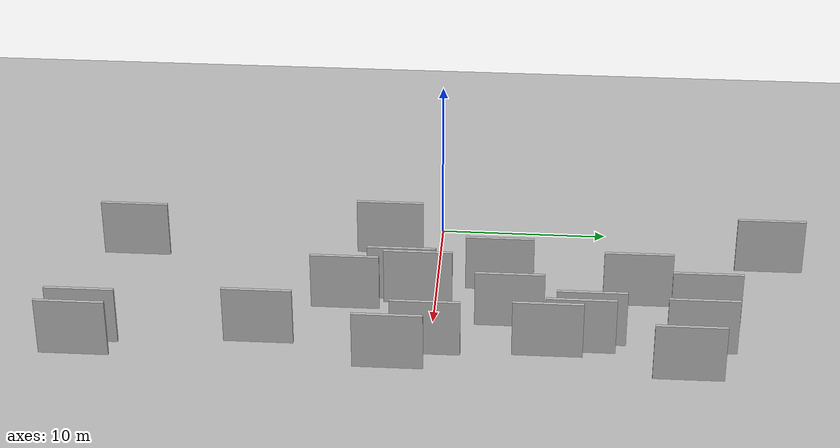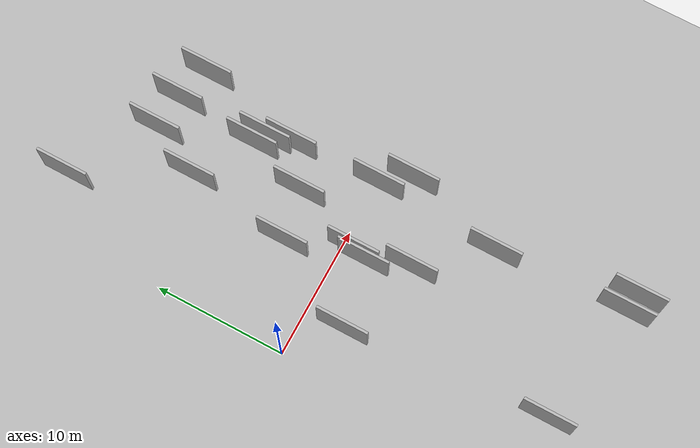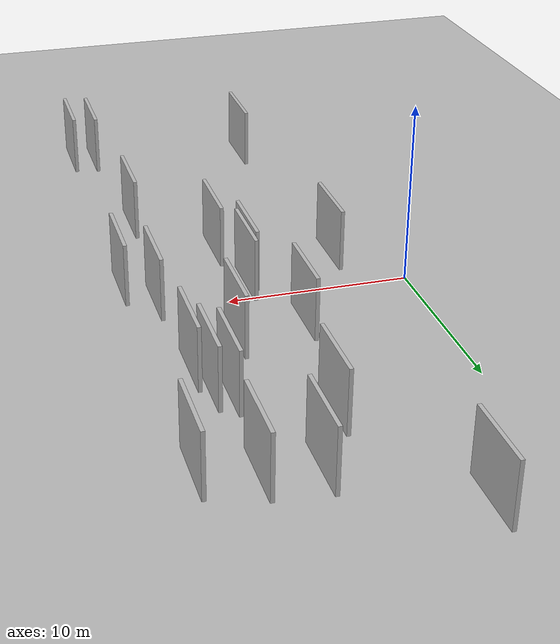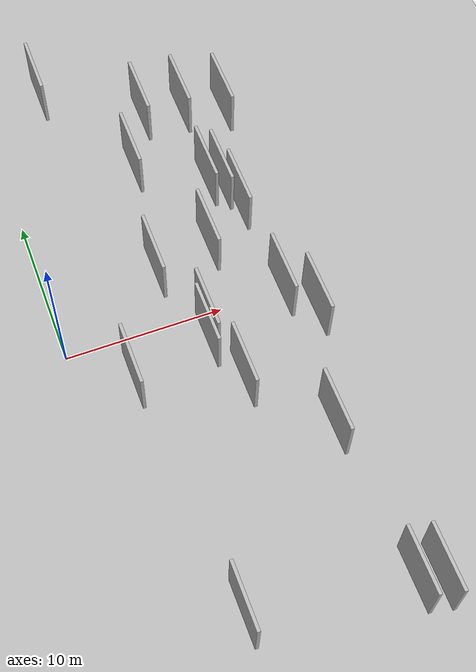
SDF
<?xml version="1.0" encoding="utf-8"?>

<sdf version="1.6">

   <world name="default">

      <gui fullscreen="0">

         <camera name="user_camera">

            <pose>-15 0 4.57585 0 0 0</pose>

            <view_controller>orbit</view_controller>

         </camera>

      </gui>

      <scene>

         <sky>

           <clouds>

             <speed>12</speed>

           </clouds>

         </sky>

         <ambient>0.4 0.4 0.4 1</ambient>

         <background>0.7 0.7 0.7 1</background>

         <shadows>1</shadows>

      </scene>

      <gravity>0 0 -9.8066</gravity>

      <magnetic_field>6e-06 2.3e-05 -4.2e-05</magnetic_field>

      <physics default="0" name="default_physics" type="ode">

         <ode>

            <solver>

               <type>quick</type>

               <iters>10</iters>

               <sor>1.0</sor>

               <use_dynamic_moi_rescaling>0</use_dynamic_moi_rescaling>

            </solver>

            <constraints>

               <cfm>0</cfm>

               <erp>0.2</erp>

               <contact_max_correcting_vel>100</contact_max_correcting_vel>

               <contact_surface_layer>0.001</contact_surface_layer>

            </constraints>

         </ode>

         <max_step_size>0.004</max_step_size>

         <real_time_factor>1</real_time_factor>

         <real_time_update_rate>250</real_time_update_rate>

      </physics>

      <light name="sun" type="directional">

         <cast_shadows>1</cast_shadows>

         <pose>0 0 10 0 0 0</pose>

         <diffuse>0.8 0.8 0.8 1</diffuse>

         <specular>0.2 0.2 0.2 1</specular>

         <attenuation>

            <range>1000</range>

            <constant>0.9</constant>

            <linear>0.01</linear>

            <quadratic>0.001</quadratic>

         </attenuation>

         <direction>-0.5 0.1 -0.9</direction>

      </light>

      <include>

         <name>ground_plane_1</name>

         <uri>model://HANNAS_ground_plane</uri>

         <pose>0 0 0  0 0 0</pose>

      </include>

      <include>

         <name>ground_plane_2</name>

         <uri>model://HANNAS_ground_plane</uri>

         <pose>100 0 0  0 0 0</pose>

      </include>

      <model name="HANNAS_wall_1">

         <static>1</static>

         <pose frame="">15.3730 -2.1959 0.0 0.000000 0.000000 1.570796</pose>

         <link name="link">

            <pose frame="">0 0 2.00 0 0 0</pose>

            <collision name="collision">

               <geometry>

                  <box>

                     <size>4.00 0.2 4.00</size>

                  </box>

               </geometry>

               <max_contacts>10</max_contacts>

               <surface>

                  <contact>

                     <ode/>

                  </contact>

                  <bounce/>

                  <friction>

                     <torsional>

                        <ode/>

                     </torsional>

                     <ode/>

                  </friction>

               </surface>

            </collision>

            <visual name="visual">

               <cast_shadows>0</cast_shadows>

               <geometry>

                  <box>

                     <size>4.00 0.2 4.00</size>

                  </box>

               </geometry>

               <material>

                  <script>

                     <uri>model://HANNAS_wall/materials/scripts</uri>

                     <uri>model://HANNAS_wall/materials/textures</uri>

                     <name>vrc/HANNAS_wall</name>

                  </script>

               </material>

            </visual>

            <self_collide>0</self_collide>

            <enable_wind>0</enable_wind>

            <kinematic>0</kinematic>

         </link>

      </model>

      <model name="HANNAS_wall_2">

         <static>1</static>

         <pose frame="">12.3552 9.1286 0.0 0.000000 0.000000 1.570796</pose>

         <link name="link">

            <pose frame="">0 0 2.00 0 0 0</pose>

            <collision name="collision">

               <geometry>

                  <box>

                     <size>4.00 0.2 4.00</size>

                  </box>

               </geometry>

               <max_contacts>10</max_contacts>

               <surface>

                  <contact>

                     <ode/>

                  </contact>

                  <bounce/>

                  <friction>

                     <torsional>

                        <ode/>

                     </torsional>

                     <ode/>

                  </friction>

               </surface>

            </collision>

            <visual name="visual">

               <cast_shadows>0</cast_shadows>

               <geometry>

                  <box>

                     <size>4.00 0.2 4.00</size>

                  </box>

               </geometry>

               <material>

                  <script>

                     <uri>model://HANNAS_wall/materials/scripts</uri>

                     <uri>model://HANNAS_wall/materials/textures</uri>

                     <name>vrc/HANNAS_wall</name>

                  </script>

               </material>

            </visual>

            <self_collide>0</self_collide>

            <enable_wind>0</enable_wind>

            <kinematic>0</kinematic>

         </link>

      </model>

      <model name="HANNAS_wall_3">

         <static>1</static>

         <pose frame="">6.9990 3.7475 0.0 0.000000 0.000000 1.570796</pose>

         <link name="link">

            <pose frame="">0 0 2.00 0 0 0</pose>

            <collision name="collision">

               <geometry>

                  <box>

                     <size>4.00 0.2 4.00</size>

                  </box>

               </geometry>

               <max_contacts>10</max_contacts>

               <surface>

                  <contact>

                     <ode/>

                  </contact>

                  <bounce/>

                  <friction>

                     <torsional>

                        <ode/>

                     </torsional>

                     <ode/>

                  </friction>

               </surface>

            </collision>

            <visual name="visual">

               <cast_shadows>0</cast_shadows>

               <geometry>

                  <box>

                     <size>4.00 0.2 4.00</size>

                  </box>

               </geometry>

               <material>

                  <script>

                     <uri>model://HANNAS_wall/materials/scripts</uri>

                     <uri>model://HANNAS_wall/materials/textures</uri>

                     <name>vrc/HANNAS_wall</name>

                  </script>

               </material>

            </visual>

            <self_collide>0</self_collide>

            <enable_wind>0</enable_wind>

            <kinematic>0</kinematic>

         </link>

      </model>

      <model name="HANNAS_wall_4">

         <static>1</static>

         <pose frame="">8.1874 11.8255 0.0 0.000000 0.000000 1.570796</pose>

         <link name="link">

            <pose frame="">0 0 2.00 0 0 0</pose>

            <collision name="collision">

               <geometry>

                  <box>

                     <size>4.00 0.2 4.00</size>

                  </box>

               </geometry>

               <max_contacts>10</max_contacts>

               <surface>

                  <contact>

                     <ode/>

                  </contact>

                  <bounce/>

                  <friction>

                     <torsional>

                        <ode/>

                     </torsional>

                     <ode/>

                  </friction>

               </surface>

            </collision>

            <visual name="visual">

               <cast_shadows>0</cast_shadows>

               <geometry>

                  <box>

                     <size>4.00 0.2 4.00</size>

                  </box>

               </geometry>

               <material>

                  <script>

                     <uri>model://HANNAS_wall/materials/scripts</uri>

                     <uri>model://HANNAS_wall/materials/textures</uri>

                     <name>vrc/HANNAS_wall</name>

                  </script>

               </material>

            </visual>

            <self_collide>0</self_collide>

            <enable_wind>0</enable_wind>

            <kinematic>0</kinematic>

         </link>

      </model>

      <model name="HANNAS_wall_5">

         <static>1</static>

         <pose frame="">4.0295 19.7095 0.0 0.000000 0.000000 1.570796</pose>

         <link name="link">

            <pose frame="">0 0 2.00 0 0 0</pose>

            <collision name="collision">

               <geometry>

                  <box>

                     <size>4.00 0.2 4.00</size>

                  </box>

               </geometry>

               <max_contacts>10</max_contacts>

               <surface>

                  <contact>

                     <ode/>

                  </contact>

                  <bounce/>

                  <friction>

                     <torsional>

                        <ode/>

                     </torsional>

                     <ode/>

                  </friction>

               </surface>

            </collision>

            <visual name="visual">

               <cast_shadows>0</cast_shadows>

               <geometry>

                  <box>

                     <size>4.00 0.2 4.00</size>

                  </box>

               </geometry>

               <material>

                  <script>

                     <uri>model://HANNAS_wall/materials/scripts</uri>

                     <uri>model://HANNAS_wall/materials/textures</uri>

                     <name>vrc/HANNAS_wall</name>

                  </script>

               </material>

            </visual>

            <self_collide>0</self_collide>

            <enable_wind>0</enable_wind>

            <kinematic>0</kinematic>

         </link>

      </model>

      <model name="HANNAS_wall_6">

         <static>1</static>

         <pose frame="">13.8644 -19.7052 0.0 0.000000 0.000000 1.570796</pose>

         <link name="link">

            <pose frame="">0 0 2.00 0 0 0</pose>

            <collision name="collision">

               <geometry>

                  <box>

                     <size>4.00 0.2 4.00</size>

                  </box>

               </geometry>

               <max_contacts>10</max_contacts>

               <surface>

                  <contact>

                     <ode/>

                  </contact>

                  <bounce/>

                  <friction>

                     <torsional>

                        <ode/>

                     </torsional>

                     <ode/>

                  </friction>

               </surface>

            </collision>

            <visual name="visual">

               <cast_shadows>0</cast_shadows>

               <geometry>

                  <box>

                     <size>4.00 0.2 4.00</size>

                  </box>

               </geometry>

               <material>

                  <script>

                     <uri>model://HANNAS_wall/materials/scripts</uri>

                     <uri>model://HANNAS_wall/materials/textures</uri>

                     <name>vrc/HANNAS_wall</name>

                  </script>

               </material>

            </visual>

            <self_collide>0</self_collide>

            <enable_wind>0</enable_wind>

            <kinematic>0</kinematic>

         </link>

      </model>

      <model name="HANNAS_wall_7">

         <static>1</static>

         <pose frame="">15.4453 14.5650 0.0 0.000000 0.000000 1.570796</pose>

         <link name="link">

            <pose frame="">0 0 2.00 0 0 0</pose>

            <collision name="collision">

               <geometry>

                  <box>

                     <size>4.00 0.2 4.00</size>

                  </box>

               </geometry>

               <max_contacts>10</max_contacts>

               <surface>

                  <contact>

                     <ode/>

                  </contact>

                  <bounce/>

                  <friction>

                     <torsional>

                        <ode/>

                     </torsional>

                     <ode/>

                  </friction>

               </surface>

            </collision>

            <visual name="visual">

               <cast_shadows>0</cast_shadows>

               <geometry>

                  <box>

                     <size>4.00 0.2 4.00</size>

                  </box>

               </geometry>

               <material>

                  <script>

                     <uri>model://HANNAS_wall/materials/scripts</uri>

                     <uri>model://HANNAS_wall/materials/textures</uri>

                     <name>vrc/HANNAS_wall</name>

                  </script>

               </material>

            </visual>

            <self_collide>0</self_collide>

            <enable_wind>0</enable_wind>

            <kinematic>0</kinematic>

         </link>

      </model>

      <model name="HANNAS_wall_8">

         <static>1</static>

         <pose frame="">12.7663 15.3997 0.0 0.000000 0.000000 1.570796</pose>

         <link name="link">

            <pose frame="">0 0 2.00 0 0 0</pose>

            <collision name="collision">

               <geometry>

                  <box>

                     <size>4.00 0.2 4.00</size>

                  </box>

               </geometry>

               <max_contacts>10</max_contacts>

               <surface>

                  <contact>

                     <ode/>

                  </contact>

                  <bounce/>

                  <friction>

                     <torsional>

                        <ode/>

                     </torsional>

                     <ode/>

                  </friction>

               </surface>

            </collision>

            <visual name="visual">

               <cast_shadows>0</cast_shadows>

               <geometry>

                  <box>

                     <size>4.00 0.2 4.00</size>

                  </box>

               </geometry>

               <material>

                  <script>

                     <uri>model://HANNAS_wall/materials/scripts</uri>

                     <uri>model://HANNAS_wall/materials/textures</uri>

                     <name>vrc/HANNAS_wall</name>

                  </script>

               </material>

            </visual>

            <self_collide>0</self_collide>

            <enable_wind>0</enable_wind>

            <kinematic>0</kinematic>

         </link>

      </model>

      <model name="HANNAS_wall_9">

         <static>1</static>

         <pose frame="">9.5190 -5.1377 0.0 0.000000 0.000000 1.570796</pose>

         <link name="link">

            <pose frame="">0 0 2.00 0 0 0</pose>

            <collision name="collision">

               <geometry>

                  <box>

                     <size>4.00 0.2 4.00</size>

                  </box>

               </geometry>

               <max_contacts>10</max_contacts>

               <surface>

                  <contact>

                     <ode/>

                  </contact>

                  <bounce/>

                  <friction>

                     <torsional>

                        <ode/>

                     </torsional>

                     <ode/>

                  </friction>

               </surface>

            </collision>

            <visual name="visual">

               <cast_shadows>0</cast_shadows>

               <geometry>

                  <box>

                     <size>4.00 0.2 4.00</size>

                  </box>

               </geometry>

               <material>

                  <script>

                     <uri>model://HANNAS_wall/materials/scripts</uri>

                     <uri>model://HANNAS_wall/materials/textures</uri>

                     <name>vrc/HANNAS_wall</name>

                  </script>

               </material>

            </visual>

            <self_collide>0</self_collide>

            <enable_wind>0</enable_wind>

            <kinematic>0</kinematic>

         </link>

      </model>

      <model name="HANNAS_wall_10">

         <static>1</static>

         <pose frame="">15.1776 -19.9972 0.0 0.000000 0.000000 1.570796</pose>

         <link name="link">

            <pose frame="">0 0 2.00 0 0 0</pose>

            <collision name="collision">

               <geometry>

                  <box>

                     <size>4.00 0.2 4.00</size>

                  </box>

               </geometry>

               <max_contacts>10</max_contacts>

               <surface>

                  <contact>

                     <ode/>

                  </contact>

                  <bounce/>

                  <friction>

                     <torsional>

                        <ode/>

                     </torsional>

                     <ode/>

                  </friction>

               </surface>

            </collision>

            <visual name="visual">

               <cast_shadows>0</cast_shadows>

               <geometry>

                  <box>

                     <size>4.00 0.2 4.00</size>

                  </box>

               </geometry>

               <material>

                  <script>

                     <uri>model://HANNAS_wall/materials/scripts</uri>

                     <uri>model://HANNAS_wall/materials/textures</uri>

                     <name>vrc/HANNAS_wall</name>

                  </script>

               </material>

            </visual>

            <self_collide>0</self_collide>

            <enable_wind>0</enable_wind>

            <kinematic>0</kinematic>

         </link>

      </model>

      <model name="HANNAS_wall_11">

         <static>1</static>

         <pose frame="">8.7654 -0.9453 0.0 0.000000 0.000000 1.570796</pose>

         <link name="link">

            <pose frame="">0 0 2.00 0 0 0</pose>

            <collision name="collision">

               <geometry>

                  <box>

                     <size>4.00 0.2 4.00</size>

                  </box>

               </geometry>

               <max_contacts>10</max_contacts>

               <surface>

                  <contact>

                     <ode/>

                  </contact>

                  <bounce/>

                  <friction>

                     <torsional>

                        <ode/>

                     </torsional>

                     <ode/>

                  </friction>

               </surface>

            </collision>

            <visual name="visual">

               <cast_shadows>0</cast_shadows>

               <geometry>

                  <box>

                     <size>4.00 0.2 4.00</size>

                  </box>

               </geometry>

               <material>

                  <script>

                     <uri>model://HANNAS_wall/materials/scripts</uri>

                     <uri>model://HANNAS_wall/materials/textures</uri>

                     <name>vrc/HANNAS_wall</name>

                  </script>

               </material>

            </visual>

            <self_collide>0</self_collide>

            <enable_wind>0</enable_wind>

            <kinematic>0</kinematic>

         </link>

      </model>

      <model name="HANNAS_wall_12">

         <static>1</static>

         <pose frame="">8.4358 -1.9177 0.0 0.000000 0.000000 1.570796</pose>

         <link name="link">

            <pose frame="">0 0 2.00 0 0 0</pose>

            <collision name="collision">

               <geometry>

                  <box>

                     <size>4.00 0.2 4.00</size>

                  </box>

               </geometry>

               <max_contacts>10</max_contacts>

               <surface>

                  <contact>

                     <ode/>

                  </contact>

                  <bounce/>

                  <friction>

                     <torsional>

                        <ode/>

                     </torsional>

                     <ode/>

                  </friction>

               </surface>

            </collision>

            <visual name="visual">

               <cast_shadows>0</cast_shadows>

               <geometry>

                  <box>

                     <size>4.00 0.2 4.00</size>

                  </box>

               </geometry>

               <material>

                  <script>

                     <uri>model://HANNAS_wall/materials/scripts</uri>

                     <uri>model://HANNAS_wall/materials/textures</uri>

                     <name>vrc/HANNAS_wall</name>

                  </script>

               </material>

            </visual>

            <self_collide>0</self_collide>

            <enable_wind>0</enable_wind>

            <kinematic>0</kinematic>

         </link>

      </model>

      <model name="HANNAS_wall_13">

         <static>1</static>

         <pose frame="">3.3746 -2.9885 0.0 0.000000 0.000000 1.570796</pose>

         <link name="link">

            <pose frame="">0 0 2.00 0 0 0</pose>

            <collision name="collision">

               <geometry>

                  <box>

                     <size>4.00 0.2 4.00</size>

                  </box>

               </geometry>

               <max_contacts>10</max_contacts>

               <surface>

                  <contact>

                     <ode/>

                  </contact>

                  <bounce/>

                  <friction>

                     <torsional>

                        <ode/>

                     </torsional>

                     <ode/>

                  </friction>

               </surface>

            </collision>

            <visual name="visual">

               <cast_shadows>0</cast_shadows>

               <geometry>

                  <box>

                     <size>4.00 0.2 4.00</size>

                  </box>

               </geometry>

               <material>

                  <script>

                     <uri>model://HANNAS_wall/materials/scripts</uri>

                     <uri>model://HANNAS_wall/materials/textures</uri>

                     <name>vrc/HANNAS_wall</name>

                  </script>

               </material>

            </visual>

            <self_collide>0</self_collide>

            <enable_wind>0</enable_wind>

            <kinematic>0</kinematic>

         </link>

      </model>

      <model name="HANNAS_wall_14">

         <static>1</static>

         <pose frame="">4.4813 -18.2755 0.0 0.000000 0.000000 1.570796</pose>

         <link name="link">

            <pose frame="">0 0 2.00 0 0 0</pose>

            <collision name="collision">

               <geometry>

                  <box>

                     <size>4.00 0.2 4.00</size>

                  </box>

               </geometry>

               <max_contacts>10</max_contacts>

               <surface>

                  <contact>

                     <ode/>

                  </contact>

                  <bounce/>

                  <friction>

                     <torsional>

                        <ode/>

                     </torsional>

                     <ode/>

                  </friction>

               </surface>

            </collision>

            <visual name="visual">

               <cast_shadows>0</cast_shadows>

               <geometry>

                  <box>

                     <size>4.00 0.2 4.00</size>

                  </box>

               </geometry>

               <material>

                  <script>

                     <uri>model://HANNAS_wall/materials/scripts</uri>

                     <uri>model://HANNAS_wall/materials/textures</uri>

                     <name>vrc/HANNAS_wall</name>

                  </script>

               </material>

            </visual>

            <self_collide>0</self_collide>

            <enable_wind>0</enable_wind>

            <kinematic>0</kinematic>

         </link>

      </model>

      <model name="HANNAS_wall_15">

         <static>1</static>

         <pose frame="">10.7857 4.4515 0.0 0.000000 0.000000 1.570796</pose>

         <link name="link">

            <pose frame="">0 0 2.00 0 0 0</pose>

            <collision name="collision">

               <geometry>

                  <box>

                     <size>4.00 0.2 4.00</size>

                  </box>

               </geometry>

               <max_contacts>10</max_contacts>

               <surface>

                  <contact>

                     <ode/>

                  </contact>

                  <bounce/>

                  <friction>

                     <torsional>

                        <ode/>

                     </torsional>

                     <ode/>

                  </friction>

               </surface>

            </collision>

            <visual name="visual">

               <cast_shadows>0</cast_shadows>

               <geometry>

                  <box>

                     <size>4.00 0.2 4.00</size>

                  </box>

               </geometry>

               <material>

                  <script>

                     <uri>model://HANNAS_wall/materials/scripts</uri>

                     <uri>model://HANNAS_wall/materials/textures</uri>

                     <name>vrc/HANNAS_wall</name>

                  </script>

               </material>

            </visual>

            <self_collide>0</self_collide>

            <enable_wind>0</enable_wind>

            <kinematic>0</kinematic>

         </link>

      </model>

      <model name="HANNAS_wall_16">

         <static>1</static>

         <pose frame="">13.3437 -9.7232 0.0 0.000000 0.000000 1.570796</pose>

         <link name="link">

            <pose frame="">0 0 2.00 0 0 0</pose>

            <collision name="collision">

               <geometry>

                  <box>

                     <size>4.00 0.2 4.00</size>

                  </box>

               </geometry>

               <max_contacts>10</max_contacts>

               <surface>

                  <contact>

                     <ode/>

                  </contact>

                  <bounce/>

                  <friction>

                     <torsional>

                        <ode/>

                     </torsional>

                     <ode/>

                  </friction>

               </surface>

            </collision>

            <visual name="visual">

               <cast_shadows>0</cast_shadows>

               <geometry>

                  <box>

                     <size>4.00 0.2 4.00</size>

                  </box>

               </geometry>

               <material>

                  <script>

                     <uri>model://HANNAS_wall/materials/scripts</uri>

                     <uri>model://HANNAS_wall/materials/textures</uri>

                     <name>vrc/HANNAS_wall</name>

                  </script>

               </material>

            </visual>

            <self_collide>0</self_collide>

            <enable_wind>0</enable_wind>

            <kinematic>0</kinematic>

         </link>

      </model>

      <model name="HANNAS_wall_17">

         <static>1</static>

         <pose frame="">13.1676 8.5301 0.0 0.000000 0.000000 1.570796</pose>

         <link name="link">

            <pose frame="">0 0 2.00 0 0 0</pose>

            <collision name="collision">

               <geometry>

                  <box>

                     <size>4.00 0.2 4.00</size>

                  </box>

               </geometry>

               <max_contacts>10</max_contacts>

               <surface>

                  <contact>

                     <ode/>

                  </contact>

                  <bounce/>

                  <friction>

                     <torsional>

                        <ode/>

                     </torsional>

                     <ode/>

                  </friction>

               </surface>

            </collision>

            <visual name="visual">

               <cast_shadows>0</cast_shadows>

               <geometry>

                  <box>

                     <size>4.00 0.2 4.00</size>

                  </box>

               </geometry>

               <material>

                  <script>

                     <uri>model://HANNAS_wall/materials/scripts</uri>

                     <uri>model://HANNAS_wall/materials/textures</uri>

                     <name>vrc/HANNAS_wall</name>

                  </script>

               </material>

            </visual>

            <self_collide>0</self_collide>

            <enable_wind>0</enable_wind>

            <kinematic>0</kinematic>

         </link>

      </model>

      <model name="HANNAS_wall_18">

         <static>1</static>

         <pose frame="">10.0527 15.7108 0.0 0.000000 0.000000 1.570796</pose>

         <link name="link">

            <pose frame="">0 0 2.00 0 0 0</pose>

            <collision name="collision">

               <geometry>

                  <box>

                     <size>4.00 0.2 4.00</size>

                  </box>

               </geometry>

               <max_contacts>10</max_contacts>

               <surface>

                  <contact>

                     <ode/>

                  </contact>

                  <bounce/>

                  <friction>

                     <torsional>

                        <ode/>

                     </torsional>

                     <ode/>

                  </friction>

               </surface>

            </collision>

            <visual name="visual">

               <cast_shadows>0</cast_shadows>

               <geometry>

                  <box>

                     <size>4.00 0.2 4.00</size>

                  </box>

               </geometry>

               <material>

                  <script>

                     <uri>model://HANNAS_wall/materials/scripts</uri>

                     <uri>model://HANNAS_wall/materials/textures</uri>

                     <name>vrc/HANNAS_wall</name>

                  </script>

               </material>

            </visual>

            <self_collide>0</self_collide>

            <enable_wind>0</enable_wind>

            <kinematic>0</kinematic>

         </link>

      </model>

      <model name="HANNAS_wall_19">

         <static>1</static>

         <pose frame="">13.9114 -0.2056 0.0 0.000000 0.000000 1.570796</pose>

         <link name="link">

            <pose frame="">0 0 2.00 0 0 0</pose>

            <collision name="collision">

               <geometry>

                  <box>

                     <size>4.00 0.2 4.00</size>

                  </box>

               </geometry>

               <max_contacts>10</max_contacts>

               <surface>

                  <contact>

                     <ode/>

                  </contact>

                  <bounce/>

                  <friction>

                     <torsional>

                        <ode/>

                     </torsional>

                     <ode/>

                  </friction>

               </surface>

            </collision>

            <visual name="visual">

               <cast_shadows>0</cast_shadows>

               <geometry>

                  <box>

                     <size>4.00 0.2 4.00</size>

                  </box>

               </geometry>

               <material>

                  <script>

                     <uri>model://HANNAS_wall/materials/scripts</uri>

                     <uri>model://HANNAS_wall/materials/textures</uri>

                     <name>vrc/HANNAS_wall</name>

                  </script>

               </material>

            </visual>

            <self_collide>0</self_collide>

            <enable_wind>0</enable_wind>

            <kinematic>0</kinematic>

         </link>

      </model>

      <model name="HANNAS_wall_20">

         <static>1</static>

         <pose frame="">13.6611 6.6818 0.0 0.000000 0.000000 1.570796</pose>

         <link name="link">

            <pose frame="">0 0 2.00 0 0 0</pose>

            <collision name="collision">

               <geometry>

                  <box>

                     <size>4.00 0.2 4.00</size>

                  </box>

               </geometry>

               <max_contacts>10</max_contacts>

               <surface>

                  <contact>

                     <ode/>

                  </contact>

                  <bounce/>

                  <friction>

                     <torsional>

                        <ode/>

                     </torsional>

                     <ode/>

                  </friction>

               </surface>

            </collision>

            <visual name="visual">

               <cast_shadows>0</cast_shadows>

               <geometry>

                  <box>

                     <size>4.00 0.2 4.00</size>

                  </box>

               </geometry>

               <material>

                  <script>

                     <uri>model://HANNAS_wall/materials/scripts</uri>

                     <uri>model://HANNAS_wall/materials/textures</uri>

                     <name>vrc/HANNAS_wall</name>

                  </script>

               </material>

            </visual>

            <self_collide>0</self_collide>

            <enable_wind>0</enable_wind>

            <kinematic>0</kinematic>

         </link>

      </model>

   </world>

</sdf>

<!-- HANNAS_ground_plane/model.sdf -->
<sdf version="1.4">
<model name="HANNAS_ground_plane">
  <static>true</static>
    <link name="link">
      <collision name="collision">
        <geometry>
          <plane>
            <normal>0 0 1</normal>
            <size>1000 1000</size>
          </plane>
        </geometry>
        <surface>
          <friction>
            <ode>
              <mu>100</mu>
              <mu2>50</mu2>
            </ode>
          </friction>
        </surface>
      </collision>
      <visual name="visual">
        <cast_shadows>false</cast_shadows>
        <geometry>
          <plane>
            <normal>0 0 1</normal>
            <size>1000 1000</size>
          </plane>
        </geometry>
        <material>
          <script>
            <uri>model://HANNAS_ground_plane/materials/scripts/HANNAS_ground_plane.material</uri>
	    <uri>model://HANNAS_ground_plane/materials/textures</uri>
            <name>HANNASGroundPlane/Image</name>
          </script>
        </material>
      </visual>
    </link>
  </model>
</sdf>
